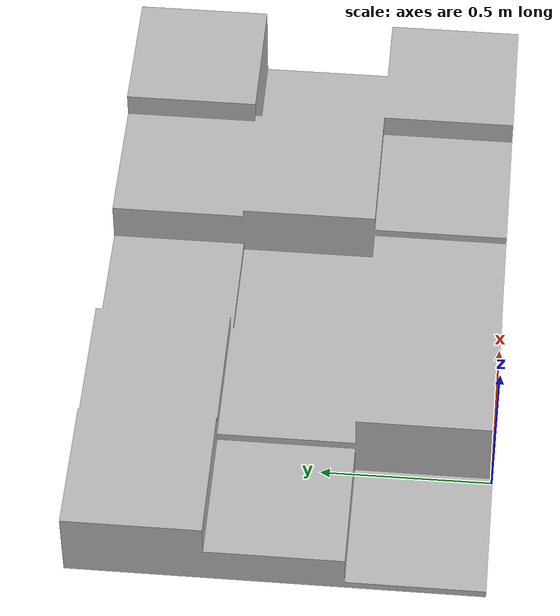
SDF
<?xml version="1.0" ?>
<sdf version="1.4">
	<model name="complex_stairs">
		<static>true</static>
		<link name="link">
			<pose>0 0 0 0 0 0</pose>
			<collision name="collision">
				<geometry>
					<mesh>
						<uri>model://variable_blocks/mesh/variable_blocks.dae</uri>
						<scale>1.0 1.0 1.0</scale>
					</mesh>
				</geometry>
			</collision>
			<visual name="visual">
				<geometry>
					<mesh>
						<uri>model://variable_blocks/mesh/variable_blocks.dae</uri>
						<scale>1.0 1.0 1.0</scale>
					</mesh>
				</geometry>
			</visual>
		</link>
	</model>
</sdf>
